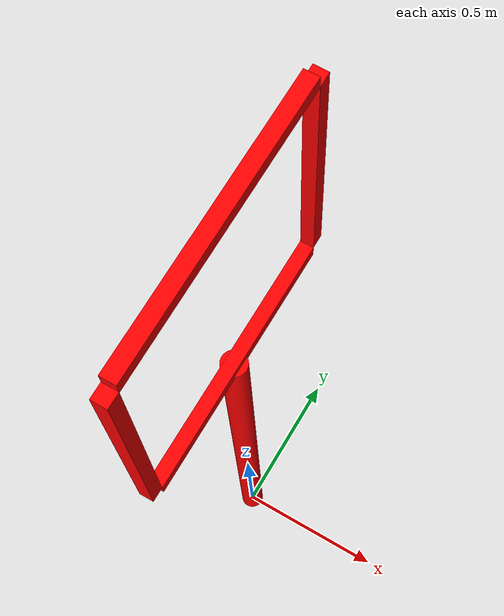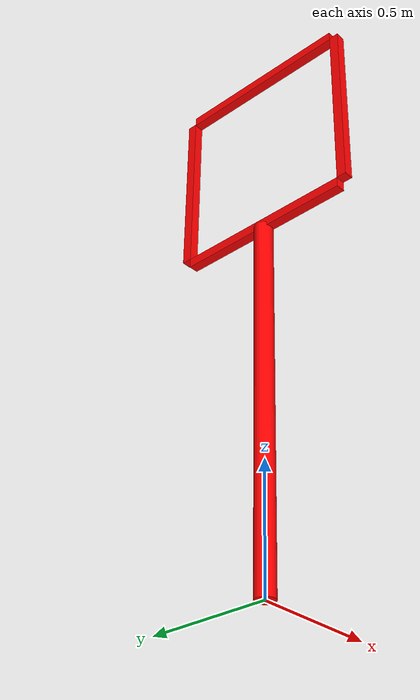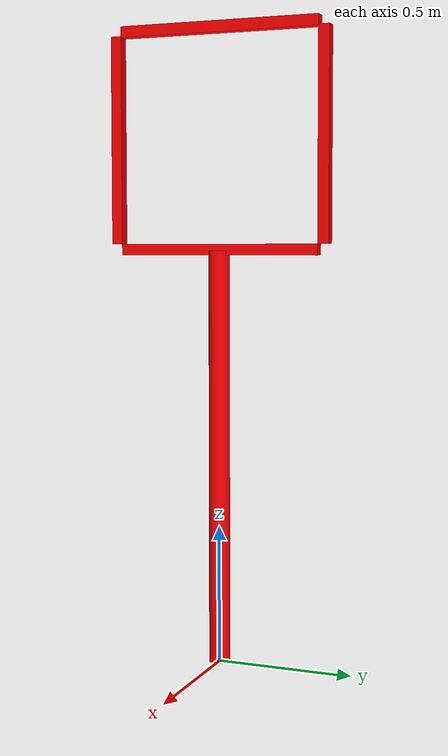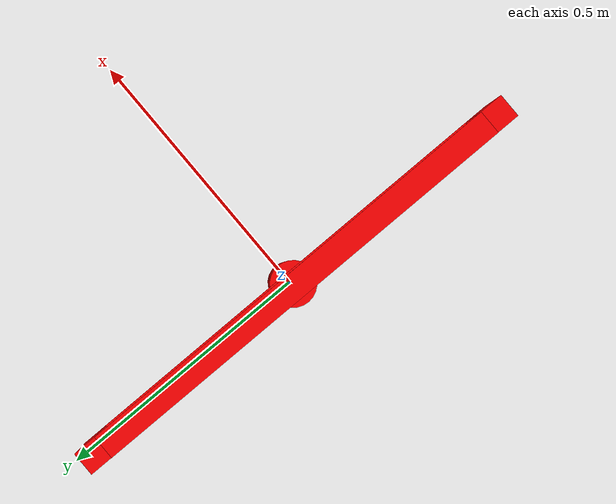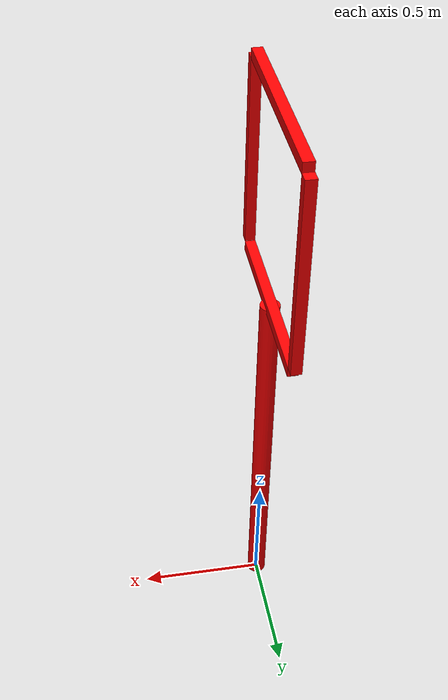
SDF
<?xml version="1.0" ?>
<sdf version="1.8">
<model name="small2_window">

        <pose>0 0 0.75 0 0 0</pose>
        <static>true</static>

        <link name="base_ring_link">
            <pose>0 0 0 0 0 0</pose>
            <inertial>
                <mass>1.0</mass>
            </inertial>
            <collision name="collision">
                <geometry>
                    <cylinder>
                        <radius>0.038</radius>
                        <length>1.5</length>
                    </cylinder>
                </geometry>
            </collision>
            <visual name="visual">
                <geometry>
                    <cylinder>
                        <radius>0.038</radius>
                        <length>1.5</length>
                    </cylinder>
                </geometry>
                <material>
                    <ambient>1 0 0 1</ambient>
                    <diffuse>1 0 0 1</diffuse>
                    <specular>0.1 0.1 0.1 1</specular>
                </material>
            </visual>
        </link>

        <link name="top_beam">
            <pose>0 0 1.54 0 0 0</pose>
            <visual name="visual">
              <geometry>
                <box><size>0.04 0.75 0.04</size></box>
              </geometry>
              <material>
                <ambient>1 0 0 1</ambient>
                <diffuse>1 0 0 1</diffuse>
                <specular>0.1 0.1 0.1 1</specular>
              </material>
            </visual>
            <collision name="collision">
              <geometry><box><size>0.04 0.75 0.04</size></box></geometry>
            </collision>
        </link>

        <link name="bottom_beam">
            <pose>0 0 0.7546 0 0 0</pose>
            <visual name="visual">
              <geometry>
                <box><size>0.04 0.75 0.04</size></box>
              </geometry>
              <material>
                <ambient>1 0 0 1</ambient>
                <diffuse>1 0 0 1</diffuse>
                <specular>0.1 0.1 0.1 1</specular>
              </material>
            </visual>
            <collision name="collision">
              <geometry><box><size>0.04 0.75 0.04</size></box></geometry>
            </collision>
        </link>

        <link name="left_beam">
            <pose>0 0.395 1.15 0 0 0</pose>
            <visual name="visual">
              <geometry>
                <box><size>0.04 0.04 0.75</size></box>
              </geometry>
              <material>
                <ambient>1 0 0 1</ambient>
                <diffuse>1 0 0 1</diffuse>
                <specular>0.1 0.1 0.1 1</specular>
              </material>
            </visual>
            <collision name="collision">
              <geometry><box><size>0.04 0.04 0.75</size></box></geometry>
            </collision>
        </link>

        <link name="right_beam">
            <pose>0 -0.395 1.15 0 0 0</pose>
            <visual name="visual">
              <geometry>
                <box><size>0.04 0.04 0.75</size></box>
              </geometry>
              <material>
                <ambient>1 0 0 1</ambient>
                <diffuse>1 0 0 1</diffuse>
                <specular>0.1 0.1 0.1 1</specular>
              </material>
            </visual>
            <collision name="collision">
              <geometry><box><size>0.04 0.04 0.75</size></box></geometry>
            </collision>
        </link>
    </model>
</sdf>
